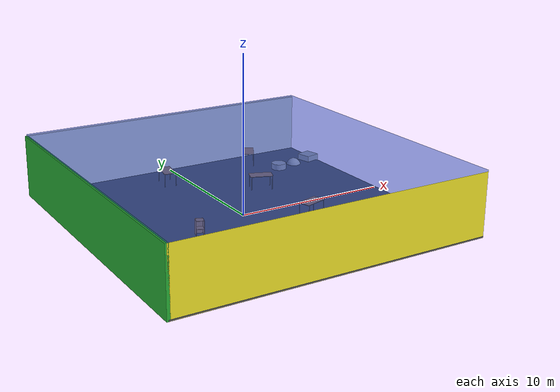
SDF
<sdf version="1.4">
 <world name="default">
  <physics type="ode">
   <max_step_size>0.001</max_step_size>
   <real_time_factor>1</real_time_factor>
   <real_time_update_rate>1000</real_time_update_rate>
   <gravity>0 0 -9.8</gravity>
  </physics>
  <scene><ambient>0.4 0.4 0.4 1</ambient><background>0.7 0.7 0.7 1</background><shadows>1</shadows></scene>
  <model name="Surrounding">
   <static>1</static>
   <link name="Ceiling">
    <collision name="Ceiling_Collision"><geometry><box><size>20 20 0.1</size></box></geometry></collision>
    <visual name="Ceiling_Visual">
     <geometry><box><size>20 20 0.1</size></box></geometry>
     <material>
      <script><uri>file://media/materials/scripts/gazebo.material</uri><name>Gazebo/BlueTransparent</name></script>
     </material>
    </visual>
    <pose>0 0 4.05 0 0 0</pose>
   </link>
   <link name="Wall_South">
    <collision name="Wall_South_Collision">
     <geometry><box><size>20 0 4</size></box></geometry>
     <pose>0 0 2 0 -0 0</pose>
    </collision>
    <visual name="Wall_South_Visual">
     <pose>0 0 2 0 -0 0</pose>
     <geometry><box><size>20 0 4</size></box></geometry>
     <material>
      <script><uri>file://media/materials/scripts/gazebo.material</uri><name>Gazebo/YellowGlow</name></script>
     </material>
    </visual>
    <velocity_decay><linear>0</linear><angular>0</angular></velocity_decay>
    <pose>0 -10 0 0 -0 0</pose>
   </link>
   <link name="Wall_East">
    <collision name="Wall_21_Collision">
     <geometry><box><size>20 0 4</size></box></geometry>
     <pose>0 0 2 0 -0 0</pose>
    </collision>
    <visual name="Wall_21_Visual">
     <pose>0 0 2 0 -0 0</pose>
     <geometry><box><size>20 0 4</size></box></geometry>
     <material>
      <script><uri>file://media/materials/scripts/gazebo.material</uri><name>Gazebo/RedTransparent</name></script>
     </material>
    </visual>
    <velocity_decay><linear>0</linear><angular>0</angular></velocity_decay>
    <pose>10 0 0 0 -0 1.5708</pose>
   </link>
   <link name="Wall_North">
    <collision name="Wall_22_Collision">
     <geometry><box><size>20 0.2 4</size></box></geometry>
     <pose>0 0 2 0 -0 0</pose>
    </collision>
    <visual name="Wall_22_Visual">
     <pose>0 0 2 0 -0 0</pose>
     <geometry><box><size>20 0.2 4</size></box></geometry>
     <material>
      <script><uri>file://media/materials/scripts/gazebo.material</uri><name>Gazebo/White</name></script>
     </material>
    </visual>
    <velocity_decay><linear>0</linear><angular>0</angular></velocity_decay>
    <pose>0 10 0 0 -0 0</pose>
   </link>
   <link name="Wall_West">
    <collision name="Wall_23_Collision">
     <geometry><box><size>20 0.2 4</size></box></geometry>
     <pose>0 0 2 0 -0 0</pose>
    </collision>
    <visual name="Wall_23_Visual">
     <pose>0 0 2 0 -0 0</pose>
     <geometry><box><size>20 0.2 4</size></box></geometry>
     <material>
      <script><uri>file://media/materials/scripts/gazebo.material</uri><name>Gazebo/GreenGlow</name></script>
     </material>
    </visual>
    <velocity_decay><linear>0</linear><angular>0</angular></velocity_decay>
    <pose>-10 0 0 0 0 -1.5708</pose>
   </link>
   <link name="Ground_link">
    <collision name="collision">
     <pose>0 0 .05 0 -0 0</pose>
     <geometry><box><size>20 20 0.1</size></box></geometry>
    </collision>
    <visual name="visual">
     <pose>0 0 .05 0 -0 0</pose>
     <geometry><box><size>20 20 0.1</size></box></geometry>
     <material>
      <script><uri>file://media/materials/scripts/gazebo.material</uri><name>Gazebo/DarkGrey</name></script>
     </material>
    </visual>
   </link>
   <static>1</static>
  </model>
  <spherical_coordinates>
   <surface_model>EARTH_WGS84</surface_model>
   <latitude_deg>0</latitude_deg>
   <longitude_deg>0</longitude_deg>
   <elevation>0</elevation>
   <heading_deg>0</heading_deg>
  </spherical_coordinates>
  <light name="lightball_0" type="diffuse">
   <diffuse>0.8 0.8 0.8 1</diffuse>
   <specular>0.2 0.2 0.2 1</specular>
   <attenuation>
    <range>100</range>
    <constant>0.7</constant>
    <linear>0.01</linear>
    <quadratic>0.001</quadratic>
   </attenuation>
   <direction>-0.5 0.1 -0.9</direction>
   <pose>-6.56000728796 7.37489243226 3.56270226447 0 0 0</pose>
  </light>
  <light name="lightball_1" type="diffuse">
   <diffuse>0.8 0.8 0.8 1</diffuse>
   <specular>0.2 0.2 0.2 1</specular>
   <attenuation>
    <range>100</range>
    <constant>0.7</constant>
    <linear>0.01</linear>
    <quadratic>0.001</quadratic>
   </attenuation>
   <direction>-0.5 0.1 -0.9</direction>
   <pose>-6.17524946647 -9.83502292356 3.43149895136 0 0 0</pose>
  </light>
  <light name="lightball_2" type="diffuse">
   <diffuse>0.8 0.8 0.8 1</diffuse>
   <specular>0.2 0.2 0.2 1</specular>
   <attenuation>
    <range>100</range>
    <constant>0.7</constant>
    <linear>0.01</linear>
    <quadratic>0.001</quadratic>
   </attenuation>
   <direction>-0.5 0.1 -0.9</direction>
   <pose>3.42969432807 1.9767976924 2.58961971703 0 0 0</pose>
  </light>
  <light name="lightball_3" type="diffuse">
   <diffuse>0.8 0.8 0.8 1</diffuse>
   <specular>0.2 0.2 0.2 1</specular>
   <attenuation>
    <range>100</range>
    <constant>0.7</constant>
    <linear>0.01</linear>
    <quadratic>0.001</quadratic>
   </attenuation>
   <direction>-0.5 0.1 -0.9</direction>
   <pose>0.591079313995 -3.37577955846 2.72627820212 0 0 0</pose>
  </light>
  <light name="lightball_4" type="diffuse">
   <diffuse>0.8 0.8 0.8 1</diffuse>
   <specular>0.2 0.2 0.2 1</specular>
   <attenuation>
    <range>100</range>
    <constant>0.7</constant>
    <linear>0.01</linear>
    <quadratic>0.001</quadratic>
   </attenuation>
   <direction>-0.5 0.1 -0.9</direction>
   <pose>0.77925001299 2.01520155974 3.30379760642 0 0 0</pose>
  </light>
  <light name="lightball_5" type="diffuse">
   <diffuse>0.8 0.8 0.8 1</diffuse>
   <specular>0.2 0.2 0.2 1</specular>
   <attenuation>
    <range>100</range>
    <constant>0.7</constant>
    <linear>0.01</linear>
    <quadratic>0.001</quadratic>
   </attenuation>
   <direction>-0.5 0.1 -0.9</direction>
   <pose>3.15517060723 -8.85421952138 2.47906238221 0 0 0</pose>
  </light>
  <light name="lightball_6" type="diffuse">
   <diffuse>0.8 0.8 0.8 1</diffuse>
   <specular>0.2 0.2 0.2 1</specular>
   <attenuation>
    <range>100</range>
    <constant>0.7</constant>
    <linear>0.01</linear>
    <quadratic>0.001</quadratic>
   </attenuation>
   <direction>-0.5 0.1 -0.9</direction>
   <pose>7.67528355975 8.18153302157 1.33381793228 0 0 0</pose>
  </light>
  <light name="lightball_7" type="diffuse">
   <diffuse>0.8 0.8 0.8 1</diffuse>
   <specular>0.2 0.2 0.2 1</specular>
   <attenuation>
    <range>100</range>
    <constant>0.7</constant>
    <linear>0.01</linear>
    <quadratic>0.001</quadratic>
   </attenuation>
   <direction>-0.5 0.1 -0.9</direction>
   <pose>-5.20164363257 3.70885946696 1.28409981717 0 0 0</pose>
  </light>
  <light name="lightball_8" type="diffuse">
   <diffuse>0.8 0.8 0.8 1</diffuse>
   <specular>0.2 0.2 0.2 1</specular>
   <attenuation>
    <range>100</range>
    <constant>0.7</constant>
    <linear>0.01</linear>
    <quadratic>0.001</quadratic>
   </attenuation>
   <direction>-0.5 0.1 -0.9</direction>
   <pose>7.6923704708 7.51311335756 2.73383352742 0 0 0</pose>
  </light>
  <light name="lightball_9" type="diffuse">
   <diffuse>0.8 0.8 0.8 1</diffuse>
   <specular>0.2 0.2 0.2 1</specular>
   <attenuation>
    <range>100</range>
    <constant>0.7</constant>
    <linear>0.01</linear>
    <quadratic>0.001</quadratic>
   </attenuation>
   <direction>-0.5 0.1 -0.9</direction>
   <pose>-1.22081578468 8.32186990711 0.987386088313 0 0 0</pose>
  </light>
  <light name="lightball_10" type="diffuse">
   <diffuse>0.8 0.8 0.8 1</diffuse>
   <specular>0.2 0.2 0.2 1</specular>
   <attenuation>
    <range>100</range>
    <constant>0.7</constant>
    <linear>0.01</linear>
    <quadratic>0.001</quadratic>
   </attenuation>
   <direction>-0.5 0.1 -0.9</direction>
   <pose>9.15839262787 -9.64871173917 2.70772704124 0 0 0</pose>
  </light>
  <light name="lightball_11" type="diffuse">
   <diffuse>0.8 0.8 0.8 1</diffuse>
   <specular>0.2 0.2 0.2 1</specular>
   <attenuation>
    <range>100</range>
    <constant>0.7</constant>
    <linear>0.01</linear>
    <quadratic>0.001</quadratic>
   </attenuation>
   <direction>-0.5 0.1 -0.9</direction>
   <pose>7.56661442714 3.70212348303 3.71677125787 0 0 0</pose>
  </light>
  <include><uri>model://cabinet</uri><pose>-8.6643673819 5.42373097642 0 0 0 0.720486133805</pose></include>
  <include><uri>model://cabinet</uri><pose>-3.83888530265 -1.53779852645 0 0 0 1.25293548364</pose></include>
  <include><uri>model://table</uri><pose>-1.50575382032 7.38464010186 0 0 0 1.41782396435</pose></include>
  <include><uri>model://table</uri><pose>3.43711013939 -2.24349142936 0 0 0 0.286817733259</pose></include>
  <include><uri>model://table</uri><pose>3.36951493848 3.478652972 0 0 0 2.7891209785</pose></include>
  <include><uri>model://table</uri><pose>5.29769598415 8.36325569574 0 0 0 1.05113827021</pose></include>
  <include>
   <uri>model://textured_shapes</uri>
   <pose>8.03720702579 6.6353114778 0 0 0 1.80653571687</pose>
  </include>
 </world>
</sdf>

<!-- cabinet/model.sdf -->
<sdf version="1.5">
  <model name="cabinet">
    <static>true</static>
    <link name="cabinet_bottom_plate">
      <inertial>
        <pose>0 0 -1 0 0 0</pose>
        <inertia>
          <ixx>2.050000</ixx>
          <ixy>0</ixy>
          <ixz>0</ixz>
          <iyy>2.050000</iyy>
          <iyz>0</iyz>
          <izz>2.050000</izz>
        </inertia>
        <mass>25.000000</mass>
      </inertial>
      <collision name="cabinet_bottom_plate_geom">
        <pose>0 0 0.010000 0 0 0</pose>
        <geometry>
          <box>
            <size>0.450000 0.450000 0.020000</size>
          </box>
        </geometry>
      </collision>
      <visual name="cabinet_bottom_plate_geom_visual">
        <pose>0 0 0.010000 0 0 0</pose>
        <geometry>
          <box>
            <size>0.450000 0.450000 0.020000</size>
          </box>
        </geometry>
        <material>
          <script>
            <uri>model://media/materials/scripts/gazebo.material</uri>
            <name>Gazebo/Wood</name>
          </script>
        </material>
      </visual>
      <collision name="cabinet_bottom_plate_geom_cabinet_back_plate">
        <pose>0.235000 0 0.510000 0 0 0</pose>
        <geometry>
          <box>
            <size>0.020000 0.450000 1.020000</size>
          </box>
        </geometry>
      </collision>
      <visual name="cabinet_bottom_plate_geom_cabinet_back_plate_visual">
        <pose>0.235000 0 0.510000 0 0 0</pose>
        <geometry>
          <box>
            <size>0.020000 0.450000 1.020000</size>
          </box>
        </geometry>
        <material>
          <script>
            <uri>model://media/materials/scripts/gazebo.material</uri>
            <name>Gazebo/Wood</name>
          </script>
        </material>
      </visual>
      <collision name="cabinet_bottom_plate_geom_cabinet_left_plate">
        <pose>0 0.235000 0.510000 0 0 0</pose>
        <geometry>
          <box>
            <size>0.450000 0.020000 1.020000</size>
          </box>
        </geometry>
      </collision>
      <visual name="cabinet_bottom_plate_geom_cabinet_left_plate_visual">
        <pose>0 0.235000 0.510000 0 0 0</pose>
        <geometry>
          <box>
            <size>0.450000 0.020000 1.020000</size>
          </box>
        </geometry>
        <material>
          <script>
            <uri>model://media/materials/scripts/gazebo.material</uri>
            <name>Gazebo/Wood</name>
          </script>
        </material>
      </visual>
      <collision name="cabinet_bottom_plate_geom_cabinet_middle_plate">
        <pose>0 0 0.510000 0 0 0</pose>
        <geometry>
          <box>
            <size>0.450000 0.450000 0.020000</size>
          </box>
        </geometry>
      </collision>
      <visual name="cabinet_bottom_plate_geom_cabinet_middle_plate_visual">
        <pose>0 0 0.510000 0 0 0</pose>
        <geometry>
          <box>
            <size>0.450000 0.450000 0.020000</size>
          </box>
        </geometry>
        <material>
          <script>
            <uri>model://media/materials/scripts/gazebo.material</uri>
            <name>Gazebo/Wood</name>
          </script>
        </material>
      </visual>
      <collision name="cabinet_bottom_plate_geom_cabinet_right_plate">
        <pose>0 -0.235000 0.510000 0 0 0</pose>
        <geometry>
          <box>
            <size>0.450000 0.020000 1.020000</size>
          </box>
        </geometry>
      </collision>
      <visual name="cabinet_bottom_plate_geom_cabinet_right_plate_visual">
        <pose>0 -0.235000 0.510000 0 0 0</pose>
        <geometry>
          <box>
            <size>0.450000 0.020000 1.020000</size>
          </box>
        </geometry>
        <material>
          <script>
            <uri>model://media/materials/scripts/gazebo.material</uri>
            <name>Gazebo/Wood</name>
          </script>
        </material>
      </visual>
      <collision name="cabinet_bottom_plate_geom_cabinet_top_plate">
        <pose>0 0 1.010000 0 0 0</pose>
        <geometry>
          <box>
            <size>0.450000 0.450000 0.020000</size>
          </box>
        </geometry>
      </collision>
      <visual name="cabinet_bottom_plate_geom_cabinet_top_plate_visual">
        <pose>0 0 1.010000 0 0 0</pose>
        <geometry>
          <box>
            <size>0.450000 0.450000 0.020000</size>
          </box>
        </geometry>
        <material>
          <script>
            <uri>model://media/materials/scripts/gazebo.material</uri>
            <name>Gazebo/Wood</name>
          </script>
        </material>
      </visual>
    </link>
  </model>
</sdf>

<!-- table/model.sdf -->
<sdf version="1.5">
  <model name="table">
    <static>true</static>
    <link name="link">
      <collision name="surface">
        <pose>0 0 1.0 0 0 0</pose>
        <geometry>
          <box>
            <size>1.5 0.8 0.03</size>
          </box>
        </geometry>
        <surface>
          <friction>
            <ode>
              <mu>0.6</mu>
              <mu2>0.6</mu2>
            </ode>
          </friction>
        </surface>
      </collision>
      <visual name="visual1">
        <pose>0 0 1.0 0 0 0</pose>
        <geometry>
          <box>
            <size>1.5 0.8 0.03</size>
          </box>
        </geometry>
        <material>
          <script>
            <uri>model://media/materials/scripts/gazebo.material</uri>
            <name>Gazebo/Wood</name>
          </script>
        </material>
      </visual>
      <collision name="front_left_leg">
        <pose>0.68 0.38 0.5 0 0 0</pose>
        <geometry>
          <cylinder>
            <radius>0.02</radius>
            <length>1.0</length>
          </cylinder>
        </geometry>
      </collision>
      <visual name="front_left_leg">
        <pose>0.68 0.38 0.5 0 0 0</pose>
        <geometry>
          <cylinder>
            <radius>0.02</radius>
            <length>1.0</length>
          </cylinder>
        </geometry>
        <material>
          <script>
            <uri>model://media/materials/scripts/gazebo.material</uri>
            <name>Gazebo/Grey</name>
          </script>
        </material>
      </visual>
      <collision name="front_right_leg">
        <pose>0.68 -0.38 0.5 0 0 0</pose>
        <geometry>
          <cylinder>
            <radius>0.02</radius>
            <length>1.0</length>
          </cylinder>
        </geometry>
      </collision>
      <visual name="front_right_leg">
        <pose>0.68 -0.38 0.5 0 0 0</pose>
        <geometry>
          <cylinder>
            <radius>0.02</radius>
            <length>1.0</length>
          </cylinder>
        </geometry>
        <material>
          <script>
            <uri>model://media/materials/scripts/gazebo.material</uri>
            <name>Gazebo/Grey</name>
          </script>
        </material>
      </visual>
      <collision name="back_right_leg">
        <pose>-0.68 -0.38 0.5 0 0 0</pose>
        <geometry>
          <cylinder>
            <radius>0.02</radius>
            <length>1.0</length>
          </cylinder>
        </geometry>
      </collision>
      <visual name="back_right_leg">
        <pose>-0.68 -0.38 0.5 0 0 0</pose>
        <geometry>
          <cylinder>
            <radius>0.02</radius>
            <length>1.0</length>
          </cylinder>
        </geometry>
        <material>
          <script>
            <uri>model://media/materials/scripts/gazebo.material</uri>
            <name>Gazebo/Grey</name>
          </script>
        </material>
      </visual>
      <collision name="back_left_leg">
        <pose>-0.68 0.38 0.5 0 0 0</pose>
        <geometry>
          <cylinder>
            <radius>0.02</radius>
            <length>1.0</length>
          </cylinder>
        </geometry>
      </collision>
      <visual name="back_left_leg">
        <pose>-0.68 0.38 0.5 0 0 0</pose>
        <geometry>
          <cylinder>
            <radius>0.02</radius>
            <length>1.0</length>
          </cylinder>
        </geometry>
        <material>
          <script>
            <uri>model://media/materials/scripts/gazebo.material</uri>
            <name>Gazebo/Grey</name>
          </script>
        </material>
      </visual>
    </link>
  </model>
</sdf>

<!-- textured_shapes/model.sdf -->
<sdf version="1.6">
  <model name="textured_shapes">
    <pose>0 0 0.5 0 0 0</pose>
    <link name="box">
      <pose>0 -1.5 0 0 0 0</pose>
      <collision name="collision">
        <geometry>
          <box>
            <size>1 1 1</size>
          </box>
        </geometry>
      </collision>
      <visual name="visual">
        <geometry>
          <box>
            <size>1 1 1</size>
          </box>
        </geometry>
        <material>
          <script>
            <uri>model://../model_source/models/textured_shapes/materials/scripts</uri>
            <uri>model://../model_source/models/textured_shapes/materials/textures</uri>
            <name>TexturedShape/Squares</name>
          </script>
        </material>
      </visual>
    </link>
    <link name="sphere">
      <collision name="collision">
        <geometry>
          <sphere>
            <radius>0.5</radius>
          </sphere>
        </geometry>
      </collision>
      <visual name="visual">
        <geometry>
          <sphere>
            <radius>0.5</radius>
          </sphere>
        </geometry>
        <material>
          <script>
            <uri>model://../model_source/models/textured_shapes/materials/scripts</uri>
            <uri>model://../model_source/models/textured_shapes/materials/textures</uri>
            <name>TexturedShape/Squares</name>
          </script>
        </material>
      </visual>
    </link>
    <link name="cylinder">
      <pose>0 1.5 0 0 0 0</pose>
      <collision name="collision">
        <geometry>
          <cylinder>
            <radius>0.5</radius>
            <length>1</length>
          </cylinder>
        </geometry>
      </collision>
      <visual name="visual">
        <geometry>
          <cylinder>
            <radius>0.5</radius>
            <length>1</length>
          </cylinder>
        </geometry>
        <material>
          <script>
            <uri>model://../model_source/models/textured_shapes/materials/scripts</uri>
            <uri>model://../model_source/models/textured_shapes/materials/textures</uri>
            <name>TexturedShape/Squares</name>
          </script>
        </material>
      </visual>
    </link>
  </model>
</sdf>
